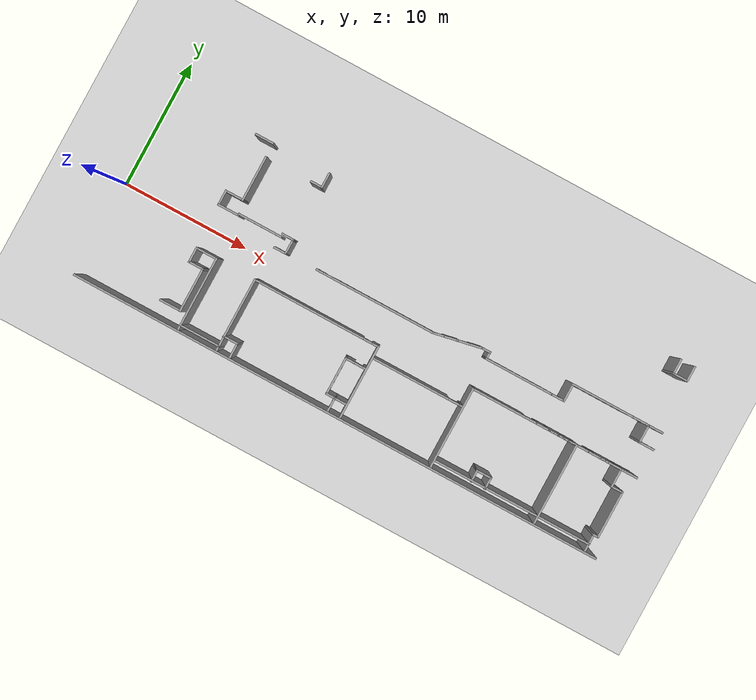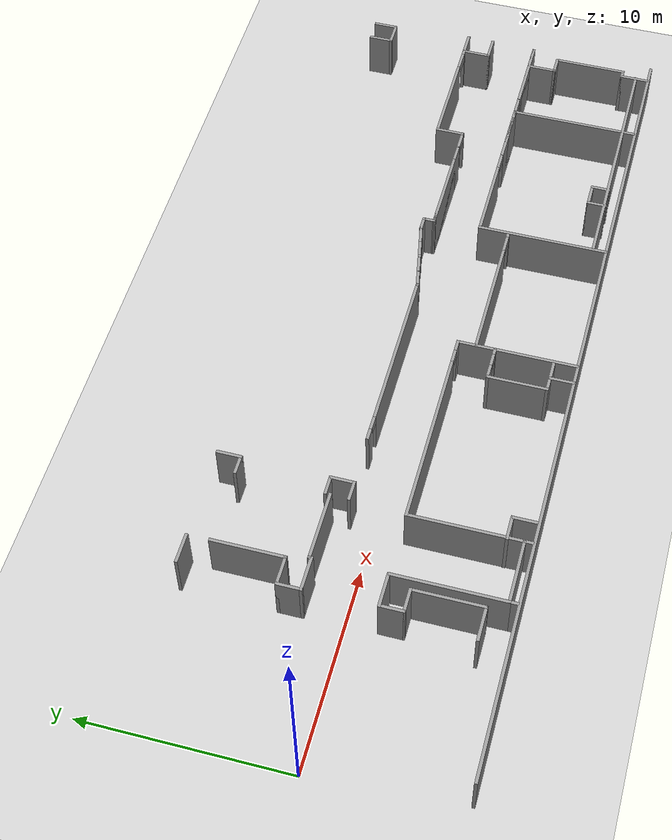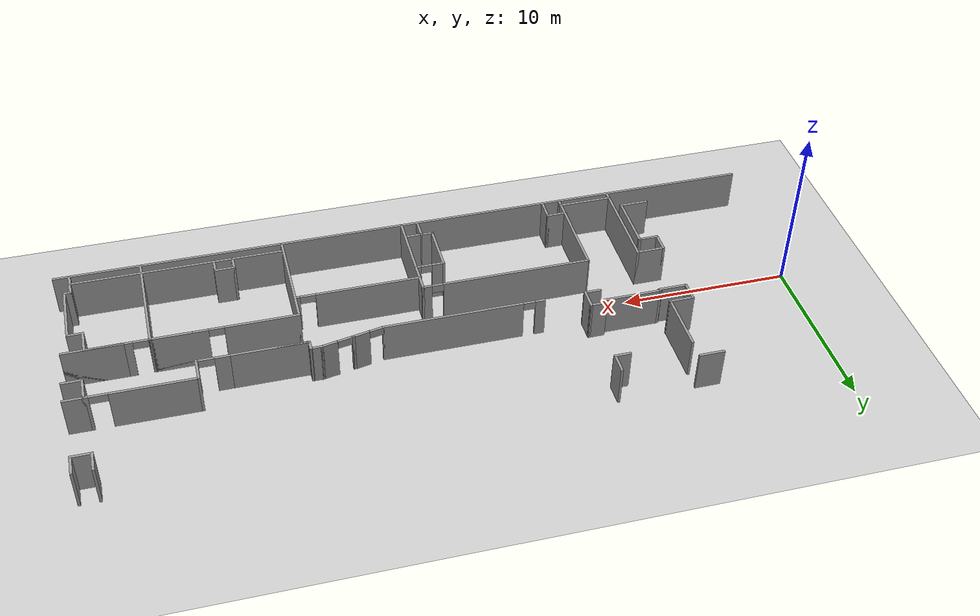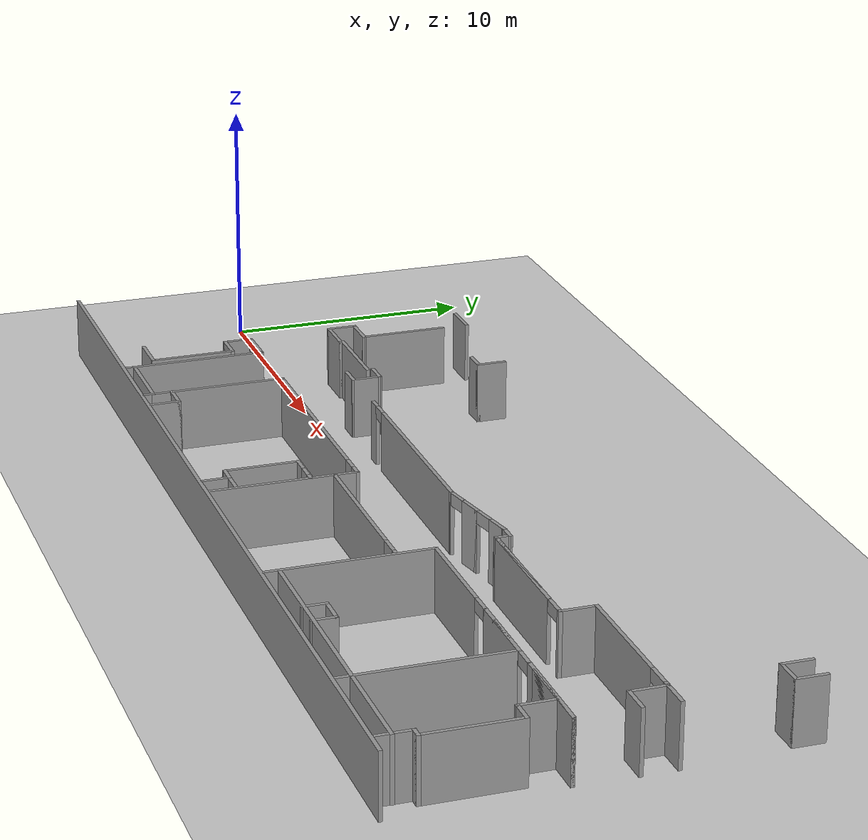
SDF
<sdf version="1.6">
 <world name="default">
  <model name="ground_plane">
   <static>1</static>
   <link name="link">
    <collision name="collision">
     <geometry><plane><normal>0 0 1</normal><size>100 100</size></plane></geometry>
     <surface>
      <contact><collide_bitmask>65535</collide_bitmask></contact>
      <friction><ode><mu>100</mu><mu2>50</mu2></ode></friction>
     </surface>
    </collision>
    <visual name="visual">
     <cast_shadows>0</cast_shadows>
     <geometry><plane><normal>0 0 1</normal><size>100 100</size></plane></geometry>
     <material>
      <script><uri>file://media/materials/scripts/gazebo.material</uri><name>Gazebo/Grey</name></script>
     </material>
    </visual>
   </link>
  </model>
  <model name="Tsudanuma_2-3-with_door">
   <pose>11.7222 12.8329 0 0 -0 0</pose>
   <link name="Wall_10">
    <collision name="Wall_10_Collision">
     <geometry><box><size>42.1591 0.15 2.5</size></box></geometry>
     <pose>0 0 1.25 0 -0 0</pose>
    </collision>
    <visual name="Wall_10_Visual">
     <pose>0 0 1.25 0 -0 0</pose>
     <geometry><box><size>42.1591 0.15 2.5</size></box></geometry>
     <material>
      <script><uri>file://media/materials/scripts/gazebo.material</uri><name>Gazebo/Grey</name></script>
      <ambient>1 1 1 1</ambient>
     </material>
     <meta><layer>0</layer></meta>
    </visual>
    <pose>9.87341 -20.1767 0 0 -0 -0.000631</pose>
   </link>
   <link name="Wall_199">
    <collision name="Wall_199_Collision">
     <geometry><box><size>1.75 0.15 2.5</size></box></geometry>
     <pose>0 0 1.25 0 -0 0</pose>
    </collision>
    <visual name="Wall_199_Visual">
     <pose>0 0 1.25 0 -0 0</pose>
     <geometry><box><size>1.75 0.15 2.5</size></box></geometry>
     <material>
      <script><uri>file://media/materials/scripts/gazebo.material</uri><name>Gazebo/Grey</name></script>
      <ambient>1 1 1 1</ambient>
     </material>
     <meta><layer>0</layer></meta>
    </visual>
    <pose>-4.13112 -18.8135 0 0 -0 0</pose>
   </link>
   <link name="Wall_200">
    <collision name="Wall_200_Collision">
     <geometry><box><size>3.5 0.15 2.5</size></box></geometry>
     <pose>0 0 1.25 0 -0 0</pose>
    </collision>
    <visual name="Wall_200_Visual">
     <pose>0 0 1.25 0 -0 0</pose>
     <geometry><box><size>3.5 0.15 2.5</size></box></geometry>
     <material>
      <script><uri>file://media/materials/scripts/gazebo.material</uri><name>Gazebo/Grey</name></script>
      <ambient>1 1 1 1</ambient>
     </material>
     <meta><layer>0</layer></meta>
    </visual>
    <pose>-3.33112 -17.1385 0 0 -0 1.5708</pose>
   </link>
   <link name="Wall_201">
    <collision name="Wall_201_Collision">
     <geometry><box><size>1.25 0.15 2.5</size></box></geometry>
     <pose>0 0 1.25 0 -0 0</pose>
    </collision>
    <visual name="Wall_201_Visual">
     <pose>0 0 1.25 0 -0 0</pose>
     <geometry><box><size>1.25 0.15 2.5</size></box></geometry>
     <material>
      <script><uri>file://media/materials/scripts/gazebo.material</uri><name>Gazebo/Grey</name></script>
      <ambient>1 1 1 1</ambient>
     </material>
     <meta><layer>0</layer></meta>
    </visual>
    <pose>-3.88112 -15.4635 0 0 -0 3.14159</pose>
   </link>
   <link name="Wall_202">
    <collision name="Wall_202_Collision">
     <geometry><box><size>1.25 0.15 2.5</size></box></geometry>
     <pose>0 0 1.25 0 -0 0</pose>
    </collision>
    <visual name="Wall_202_Visual">
     <pose>0 0 1.25 0 -0 0</pose>
     <geometry><box><size>1.25 0.15 2.5</size></box></geometry>
     <material>
      <script><uri>file://media/materials/scripts/gazebo.material</uri><name>Gazebo/Grey</name></script>
      <ambient>1 1 1 1</ambient>
     </material>
     <meta><layer>0</layer></meta>
    </visual>
    <pose>-4.43112 -14.9135 0 0 -0 1.5708</pose>
   </link>
   <link name="Wall_203">
    <collision name="Wall_203_Collision">
     <geometry><box><size>1.75 0.15 2.5</size></box></geometry>
     <pose>0 0 1.25 0 -0 0</pose>
    </collision>
    <visual name="Wall_203_Visual">
     <pose>0 0 1.25 0 -0 0</pose>
     <geometry><box><size>1.75 0.15 2.5</size></box></geometry>
     <material>
      <script><uri>file://media/materials/scripts/gazebo.material</uri><name>Gazebo/Grey</name></script>
      <ambient>1 1 1 1</ambient>
     </material>
     <meta><layer>0</layer></meta>
    </visual>
    <pose>-3.63112 -14.3635 0 0 -0 0</pose>
   </link>
   <link name="Wall_204">
    <collision name="Wall_204_Collision">
     <geometry><box><size>5.5 0.15 2.5</size></box></geometry>
     <pose>0 0 1.25 0 -0 0</pose>
    </collision>
    <visual name="Wall_204_Visual">
     <pose>0 0 1.25 0 -0 0</pose>
     <geometry><box><size>5.5 0.15 2.5</size></box></geometry>
     <material>
      <script><uri>file://media/materials/scripts/gazebo.material</uri><name>Gazebo/Grey</name></script>
      <ambient>1 1 1 1</ambient>
     </material>
     <meta><layer>0</layer></meta>
    </visual>
    <pose>-2.83112 -17.0385 0 0 -0 -1.5708</pose>
   </link>
   <link name="Wall_205">
    <collision name="Wall_205_Collision">
     <geometry><box><size>3.25 0.15 2.5</size></box></geometry>
     <pose>0 0 1.25 0 -0 0</pose>
    </collision>
    <visual name="Wall_205_Visual">
     <pose>0 0 1.25 0 -0 0</pose>
     <geometry><box><size>3.25 0.15 2.5</size></box></geometry>
     <material>
      <script><uri>file://media/materials/scripts/gazebo.material</uri><name>Gazebo/Grey</name></script>
      <ambient>1 1 1 1</ambient>
     </material>
     <meta><layer>0</layer></meta>
    </visual>
    <pose>-1.28112 -19.7135 0 0 -0 0</pose>
   </link>
   <link name="Wall_206">
    <collision name="Wall_206_Collision">
     <geometry><box><size>5.5 0.15 2.5</size></box></geometry>
     <pose>0 0 1.25 0 -0 0</pose>
    </collision>
    <visual name="Wall_206_Visual">
     <pose>0 0 1.25 0 -0 0</pose>
     <geometry><box><size>5.5 0.15 2.5</size></box></geometry>
     <material>
      <script><uri>file://media/materials/scripts/gazebo.material</uri><name>Gazebo/Grey</name></script>
      <ambient>1 1 1 1</ambient>
     </material>
     <meta><layer>0</layer></meta>
    </visual>
    <pose>0.268879 -17.0385 0 0 -0 1.5708</pose>
   </link>
   <link name="Wall_207">
    <pose>5.25051 -14.3635 0 0 -0 0</pose>
    <visual name="Wall_207_Visual_0">
     <pose>-0.640336 0 1.25 0 -0 0</pose>
     <geometry><box><size>8.83258 0.15 2.5</size></box></geometry>
     <material>
      <script><uri>file://media/materials/scripts/gazebo.material</uri><name>Gazebo/Grey</name></script>
      <ambient>1 1 1 1</ambient>
     </material>
     <meta><layer>0</layer></meta>
    </visual>
    <collision name="Wall_207_Collision_0">
     <geometry><box><size>8.83258 0.15 2.5</size></box></geometry>
     <pose>-0.640336 0 1.25 0 -0 0</pose>
    </collision>
    <visual name="Wall_207_Visual_1">
     <pose>4.75356 0 1.25 0 -0 0</pose>
     <geometry><box><size>0.606138 0.15 2.5</size></box></geometry>
     <material>
      <script><uri>file://media/materials/scripts/gazebo.material</uri><name>Gazebo/Grey</name></script>
      <ambient>1 1 1 1</ambient>
     </material>
     <meta><layer>0</layer></meta>
    </visual>
    <collision name="Wall_207_Collision_1">
     <geometry><box><size>0.606138 0.15 2.5</size></box></geometry>
     <pose>4.75356 0 1.25 0 -0 0</pose>
    </collision>
    <visual name="Wall_207_Visual_2">
     <pose>4.11322 0 2.25 0 -0 0</pose>
     <geometry><box><size>0.674534 0.15 0.5</size></box></geometry>
     <material>
      <script><uri>file://media/materials/scripts/gazebo.material</uri><name>Gazebo/Grey</name></script>
      <ambient>1 1 1 1</ambient>
     </material>
     <meta><layer>0</layer></meta>
    </visual>
    <collision name="Wall_207_Collision_2">
     <geometry><box><size>0.674534 0.15 0.5</size></box></geometry>
     <pose>4.11322 0 2.25 0 -0 0</pose>
    </collision>
   </link>
   <link name="Wall_209">
    <collision name="Wall_209_Collision">
     <geometry><box><size>5.9 0.15 2.5</size></box></geometry>
     <pose>0 0 1.25 0 -0 0</pose>
    </collision>
    <visual name="Wall_209_Visual">
     <pose>0 0 1.25 0 -0 0</pose>
     <geometry><box><size>5.9 0.15 2.5</size></box></geometry>
     <material>
      <script><uri>file://media/materials/scripts/gazebo.material</uri><name>Gazebo/Grey</name></script>
      <ambient>1 1 1 1</ambient>
     </material>
     <meta><layer>0</layer></meta>
    </visual>
    <pose>10.2321 -17.2385 0 0 -0 -1.5708</pose>
   </link>
   <link name="Wall_211">
    <pose>13.852 -15.2435 0 0 -0 0</pose>
    <visual name="Wall_211_Visual_0">
     <pose>-0.56144 0 1.25 0 -0 0</pose>
     <geometry><box><size>6.12712 0.15 2.5</size></box></geometry>
     <material>
      <script><uri>file://media/materials/scripts/gazebo.material</uri><name>Gazebo/Grey</name></script>
      <ambient>1 1 1 1</ambient>
     </material>
     <meta><layer>0</layer></meta>
    </visual>
    <collision name="Wall_211_Collision_0">
     <geometry><box><size>6.12712 0.15 2.5</size></box></geometry>
     <pose>-0.56144 0 1.25 0 -0 0</pose>
    </collision>
    <visual name="Wall_211_Visual_1">
     <pose>3.51356 0 1.25 0 -0 0</pose>
     <geometry><box><size>0.22288 0.15 2.5</size></box></geometry>
     <material>
      <script><uri>file://media/materials/scripts/gazebo.material</uri><name>Gazebo/Grey</name></script>
      <ambient>1 1 1 1</ambient>
     </material>
     <meta><layer>0</layer></meta>
    </visual>
    <collision name="Wall_211_Collision_1">
     <geometry><box><size>0.22288 0.15 2.5</size></box></geometry>
     <pose>3.51356 0 1.25 0 -0 0</pose>
    </collision>
    <visual name="Wall_211_Visual_2">
     <pose>2.95212 0 2.25 0 -0 0</pose>
     <geometry><box><size>0.9 0.15 0.5</size></box></geometry>
     <material>
      <script><uri>file://media/materials/scripts/gazebo.material</uri><name>Gazebo/Grey</name></script>
      <ambient>1 1 1 1</ambient>
     </material>
     <meta><layer>0</layer></meta>
    </visual>
    <collision name="Wall_211_Collision_2">
     <geometry><box><size>0.9 0.15 0.5</size></box></geometry>
     <pose>2.95212 0 2.25 0 -0 0</pose>
    </collision>
   </link>
   <link name="Wall_213">
    <collision name="Wall_213_Collision">
     <geometry><box><size>6.5 0.15 2.5</size></box></geometry>
     <pose>0 0 1.25 0 -0 0</pose>
    </collision>
    <visual name="Wall_213_Visual">
     <pose>0 0 1.25 0 -0 0</pose>
     <geometry><box><size>6.5 0.15 2.5</size></box></geometry>
     <material>
      <script><uri>file://media/materials/scripts/gazebo.material</uri><name>Gazebo/Grey</name></script>
      <ambient>1 1 1 1</ambient>
     </material>
     <meta><layer>0</layer></meta>
    </visual>
    <pose>17.5393 -16.9464 0 0 -0 1.5708</pose>
   </link>
   <link name="Wall_215">
    <pose>21.7143 -13.7714 0 0 -0 0</pose>
    <visual name="Wall_215_Visual_0">
     <pose>-2.09952 0 1.25 0 -0 0</pose>
     <geometry><box><size>4.30095 0.15 2.5</size></box></geometry>
     <material>
      <script><uri>file://media/materials/scripts/gazebo.material</uri><name>Gazebo/Grey</name></script>
      <ambient>1 1 1 1</ambient>
     </material>
     <meta><layer>0</layer></meta>
    </visual>
    <collision name="Wall_215_Collision_0">
     <geometry><box><size>4.30095 0.15 2.5</size></box></geometry>
     <pose>-2.09952 0 1.25 0 -0 0</pose>
    </collision>
    <visual name="Wall_215_Visual_1">
     <pose>2.60048 0 1.25 0 -0 0</pose>
     <geometry><box><size>3.29905 0.15 2.5</size></box></geometry>
     <material>
      <script><uri>file://media/materials/scripts/gazebo.material</uri><name>Gazebo/Grey</name></script>
      <ambient>1 1 1 1</ambient>
     </material>
     <meta><layer>0</layer></meta>
    </visual>
    <collision name="Wall_215_Collision_1">
     <geometry><box><size>3.29905 0.15 2.5</size></box></geometry>
     <pose>2.60048 0 1.25 0 -0 0</pose>
    </collision>
    <visual name="Wall_215_Visual_2">
     <pose>3.04013 0 1.25 0 -0 0</pose>
     <geometry><box><size>2.41973 0.15 2.5</size></box></geometry>
     <material>
      <script><uri>file://media/materials/scripts/gazebo.material</uri><name>Gazebo/Grey</name></script>
      <ambient>1 1 1 1</ambient>
     </material>
     <meta><layer>0</layer></meta>
    </visual>
    <collision name="Wall_215_Collision_2">
     <geometry><box><size>2.41973 0.15 2.5</size></box></geometry>
     <pose>3.04013 0 1.25 0 -0 0</pose>
    </collision>
    <visual name="Wall_215_Visual_3">
     <pose>0.490612 0 2.25 0 -0 0</pose>
     <geometry><box><size>0.879316 0.15 0.5</size></box></geometry>
     <material>
      <script><uri>file://media/materials/scripts/gazebo.material</uri><name>Gazebo/Grey</name></script>
      <ambient>1 1 1 1</ambient>
     </material>
     <meta><layer>0</layer></meta>
    </visual>
    <collision name="Wall_215_Collision_3">
     <geometry><box><size>0.879316 0.15 0.5</size></box></geometry>
     <pose>0.490612 0 2.25 0 -0 0</pose>
    </collision>
   </link>
   <link name="Wall_216">
    <collision name="Wall_216_Collision">
     <geometry><box><size>6.5 0.15 2.5</size></box></geometry>
     <pose>0 0 1.25 0 -0 0</pose>
    </collision>
    <visual name="Wall_216_Visual">
     <pose>0 0 1.25 0 -0 0</pose>
     <geometry><box><size>6.5 0.15 2.5</size></box></geometry>
     <material>
      <script><uri>file://media/materials/scripts/gazebo.material</uri><name>Gazebo/Grey</name></script>
      <ambient>1 1 1 1</ambient>
     </material>
     <meta><layer>0</layer></meta>
    </visual>
    <pose>25.8893 -16.9464 0 0 -0 -1.5708</pose>
   </link>
   <link name="Wall_218">
    <pose>28.3143 -13.7714 0 0 -0 0</pose>
    <visual name="Wall_218_Visual_0">
     <pose>-2.42206 0 1.25 0 -0 0</pose>
     <geometry><box><size>0.155888 0.15 2.5</size></box></geometry>
     <material>
      <script><uri>file://media/materials/scripts/gazebo.material</uri><name>Gazebo/Grey</name></script>
      <ambient>1 1 1 1</ambient>
     </material>
     <meta><layer>0</layer></meta>
    </visual>
    <collision name="Wall_218_Collision_0">
     <geometry><box><size>0.155888 0.15 2.5</size></box></geometry>
     <pose>-2.42206 0 1.25 0 -0 0</pose>
    </collision>
    <visual name="Wall_218_Visual_1">
     <pose>0.527944 0 1.25 0 -0 0</pose>
     <geometry><box><size>3.94411 0.15 2.5</size></box></geometry>
     <material>
      <script><uri>file://media/materials/scripts/gazebo.material</uri><name>Gazebo/Grey</name></script>
      <ambient>1 1 1 1</ambient>
     </material>
     <meta><layer>0</layer></meta>
    </visual>
    <collision name="Wall_218_Collision_1">
     <geometry><box><size>3.94411 0.15 2.5</size></box></geometry>
     <pose>0.527944 0 1.25 0 -0 0</pose>
    </collision>
    <visual name="Wall_218_Visual_2">
     <pose>0.750592 0 1.25 0 -0 0</pose>
     <geometry><box><size>3.49882 0.15 2.5</size></box></geometry>
     <material>
      <script><uri>file://media/materials/scripts/gazebo.material</uri><name>Gazebo/Grey</name></script>
      <ambient>1 1 1 1</ambient>
     </material>
     <meta><layer>0</layer></meta>
    </visual>
    <collision name="Wall_218_Collision_2">
     <geometry><box><size>3.49882 0.15 2.5</size></box></geometry>
     <pose>0.750592 0 1.25 0 -0 0</pose>
    </collision>
    <visual name="Wall_218_Visual_3">
     <pose>-1.91291 0 2.25 0 -0 0</pose>
     <geometry><box><size>0.862406 0.15 0.5</size></box></geometry>
     <material>
      <script><uri>file://media/materials/scripts/gazebo.material</uri><name>Gazebo/Grey</name></script>
      <ambient>1 1 1 1</ambient>
     </material>
     <meta><layer>0</layer></meta>
    </visual>
    <collision name="Wall_218_Collision_3">
     <geometry><box><size>0.862406 0.15 0.5</size></box></geometry>
     <pose>-1.91291 0 2.25 0 -0 0</pose>
    </collision>
   </link>
   <link name="Wall_220">
    <collision name="Wall_220_Collision">
     <geometry><box><size>1.48998 0.15 2.5</size></box></geometry>
     <pose>0 0 1.25 0 -0 0</pose>
    </collision>
    <visual name="Wall_220_Visual">
     <pose>0 0 1.25 0 -0 0</pose>
     <geometry><box><size>1.48998 0.15 2.5</size></box></geometry>
     <material>
      <script><uri>file://media/materials/scripts/gazebo.material</uri><name>Gazebo/Grey</name></script>
      <ambient>1 1 1 1</ambient>
     </material>
     <meta><layer>0</layer></meta>
    </visual>
    <pose>23.6117 -10.7807 0 0 -0 1.5708</pose>
   </link>
   <link name="Wall_221">
    <pose>26.6617 -10.1108 0 0 -0 0</pose>
    <visual name="Wall_221_Visual_0">
     <pose>-0.676638 0 1.25 0 -0 0</pose>
     <geometry><box><size>4.89672 0.15 2.5</size></box></geometry>
     <material>
      <script><uri>file://media/materials/scripts/gazebo.material</uri><name>Gazebo/Grey</name></script>
      <ambient>1 1 1 1</ambient>
     </material>
     <meta><layer>0</layer></meta>
    </visual>
    <collision name="Wall_221_Collision_0">
     <geometry><box><size>4.89672 0.15 2.5</size></box></geometry>
     <pose>-0.676638 0 1.25 0 -0 0</pose>
    </collision>
    <visual name="Wall_221_Visual_1">
     <pose>2.966 0 1.25 0 -0 0</pose>
     <geometry><box><size>0.317996 0.15 2.5</size></box></geometry>
     <material>
      <script><uri>file://media/materials/scripts/gazebo.material</uri><name>Gazebo/Grey</name></script>
      <ambient>1 1 1 1</ambient>
     </material>
     <meta><layer>0</layer></meta>
    </visual>
    <collision name="Wall_221_Collision_1">
     <geometry><box><size>0.317996 0.15 2.5</size></box></geometry>
     <pose>2.966 0 1.25 0 -0 0</pose>
    </collision>
    <visual name="Wall_221_Visual_2">
     <pose>2.28936 0 2.25 0 -0 0</pose>
     <geometry><box><size>1.03528 0.15 0.5</size></box></geometry>
     <material>
      <script><uri>file://media/materials/scripts/gazebo.material</uri><name>Gazebo/Grey</name></script>
      <ambient>1 1 1 1</ambient>
     </material>
     <meta><layer>0</layer></meta>
    </visual>
    <collision name="Wall_221_Collision_2">
     <geometry><box><size>1.03528 0.15 0.5</size></box></geometry>
     <pose>2.28936 0 2.25 0 -0 0</pose>
    </collision>
   </link>
   <link name="Wall_222">
    <collision name="Wall_222_Collision">
     <geometry><box><size>1.5 0.15 2.5</size></box></geometry>
     <pose>0 0 1.25 0 -0 0</pose>
    </collision>
    <visual name="Wall_222_Visual">
     <pose>0 0 1.25 0 -0 0</pose>
     <geometry><box><size>1.5 0.15 2.5</size></box></geometry>
     <material>
      <script><uri>file://media/materials/scripts/gazebo.material</uri><name>Gazebo/Grey</name></script>
      <ambient>1 1 1 1</ambient>
     </material>
     <meta><layer>0</layer></meta>
    </visual>
    <pose>29.7117 -10.7858 0 0 -0 -1.5708</pose>
   </link>
   <link name="Wall_223">
    <collision name="Wall_223_Collision">
     <geometry><box><size>1.25 0.15 2.5</size></box></geometry>
     <pose>0 0 1.25 0 -0 0</pose>
    </collision>
    <visual name="Wall_223_Visual">
     <pose>0 0 1.25 0 -0 0</pose>
     <geometry><box><size>1.25 0.15 2.5</size></box></geometry>
     <material>
      <script><uri>file://media/materials/scripts/gazebo.material</uri><name>Gazebo/Grey</name></script>
      <ambient>1 1 1 1</ambient>
     </material>
     <meta><layer>0</layer></meta>
    </visual>
    <pose>30.2617 -11.4608 0 0 -0 0</pose>
   </link>
   <link name="Wall_225">
    <pose>20.4867 -11.4507 0 0 -0 3.14159</pose>
    <visual name="Wall_225_Visual_0">
     <pose>-3.11204 0 1.25 0 -0 0</pose>
     <geometry><box><size>0.17593 0.15 2.5</size></box></geometry>
     <material>
      <script><uri>file://media/materials/scripts/gazebo.material</uri><name>Gazebo/Grey</name></script>
      <ambient>1 1 1 1</ambient>
     </material>
     <meta><layer>0</layer></meta>
    </visual>
    <collision name="Wall_225_Collision_0">
     <geometry><box><size>0.17593 0.15 2.5</size></box></geometry>
     <pose>-3.11204 0 1.25 0 -0 0</pose>
    </collision>
    <visual name="Wall_225_Visual_1">
     <pose>0.537965 0 1.25 0 -0 0</pose>
     <geometry><box><size>5.32407 0.15 2.5</size></box></geometry>
     <material>
      <script><uri>file://media/materials/scripts/gazebo.material</uri><name>Gazebo/Grey</name></script>
      <ambient>1 1 1 1</ambient>
     </material>
     <meta><layer>0</layer></meta>
    </visual>
    <collision name="Wall_225_Collision_1">
     <geometry><box><size>5.32407 0.15 2.5</size></box></geometry>
     <pose>0.537965 0 1.25 0 -0 0</pose>
    </collision>
    <visual name="Wall_225_Visual_2">
     <pose>0.971986 0 1.25 0 -0 0</pose>
     <geometry><box><size>4.45603 0.15 2.5</size></box></geometry>
     <material>
      <script><uri>file://media/materials/scripts/gazebo.material</uri><name>Gazebo/Grey</name></script>
      <ambient>1 1 1 1</ambient>
     </material>
     <meta><layer>0</layer></meta>
    </visual>
    <collision name="Wall_225_Collision_2">
     <geometry><box><size>4.45603 0.15 2.5</size></box></geometry>
     <pose>0.971986 0 1.25 0 -0 0</pose>
    </collision>
    <visual name="Wall_225_Visual_3">
     <pose>-2.59005 0 2.25 0 -0 0</pose>
     <geometry><box><size>0.868042 0.15 0.5</size></box></geometry>
     <material>
      <script><uri>file://media/materials/scripts/gazebo.material</uri><name>Gazebo/Grey</name></script>
      <ambient>1 1 1 1</ambient>
     </material>
     <meta><layer>0</layer></meta>
    </visual>
    <collision name="Wall_225_Collision_3">
     <geometry><box><size>0.868042 0.15 0.5</size></box></geometry>
     <pose>-2.59005 0 2.25 0 -0 0</pose>
    </collision>
   </link>
   <link name="Wall_227">
    <collision name="Wall_227_Collision">
     <geometry><box><size>0.75 0.15 2.5</size></box></geometry>
     <pose>0 0 1.25 0 -0 0</pose>
    </collision>
    <visual name="Wall_227_Visual">
     <pose>0 0 1.25 0 -0 0</pose>
     <geometry><box><size>0.75 0.15 2.5</size></box></geometry>
     <material>
      <script><uri>file://media/materials/scripts/gazebo.material</uri><name>Gazebo/Grey</name></script>
      <ambient>1 1 1 1</ambient>
     </material>
     <meta><layer>0</layer></meta>
    </visual>
    <pose>17.0623 -10.9296 0 0 -0 0</pose>
   </link>
   <link name="Wall_229">
    <collision name="Wall_229_Collision">
     <geometry><box><size>0.67111 0.15 2.5</size></box></geometry>
     <pose>0 0 1.25 0 -0 0</pose>
    </collision>
    <visual name="Wall_229_Visual">
     <pose>0 0 1.25 0 -0 0</pose>
     <geometry><box><size>0.67111 0.15 2.5</size></box></geometry>
     <material>
      <script><uri>file://media/materials/scripts/gazebo.material</uri><name>Gazebo/Grey</name></script>
      <ambient>1 1 1 1</ambient>
     </material>
     <meta><layer>0</layer></meta>
    </visual>
    <pose>17.362 -11.1902 0 0 -0 1.56961</pose>
   </link>
   <link name="Wall_231">
    <pose>14.9482 -11.2854 0 0 -0 0.193674</pose>
    <visual name="Wall_231_Visual_0">
     <pose>-1.87851 0 1.25 0 -0 0</pose>
     <geometry><box><size>0.090369 0.15 2.5</size></box></geometry>
     <material>
      <script><uri>file://media/materials/scripts/gazebo.material</uri><name>Gazebo/Grey</name></script>
      <ambient>1 1 1 1</ambient>
     </material>
     <meta><layer>0</layer></meta>
    </visual>
    <collision name="Wall_231_Collision_0">
     <geometry><box><size>0.090369 0.15 2.5</size></box></geometry>
     <pose>-1.87851 0 1.25 0 -0 0</pose>
    </collision>
    <visual name="Wall_231_Visual_1">
     <pose>-0.463719 0 1.25 0 -0 0</pose>
     <geometry><box><size>1.05418 0.15 2.5</size></box></geometry>
     <material>
      <script><uri>file://media/materials/scripts/gazebo.material</uri><name>Gazebo/Grey</name></script>
      <ambient>1 1 1 1</ambient>
     </material>
     <meta><layer>0</layer></meta>
    </visual>
    <collision name="Wall_231_Collision_1">
     <geometry><box><size>1.05418 0.15 2.5</size></box></geometry>
     <pose>-0.463719 0 1.25 0 -0 0</pose>
    </collision>
    <visual name="Wall_231_Visual_2">
     <pose>-0.022028 0 1.25 0 -0 0</pose>
     <geometry><box><size>0.170802 0.15 2.5</size></box></geometry>
     <material>
      <script><uri>file://media/materials/scripts/gazebo.material</uri><name>Gazebo/Grey</name></script>
      <ambient>1 1 1 1</ambient>
     </material>
     <meta><layer>0</layer></meta>
    </visual>
    <collision name="Wall_231_Collision_2">
     <geometry><box><size>0.170802 0.15 2.5</size></box></geometry>
     <pose>-0.022028 0 1.25 0 -0 0</pose>
    </collision>
    <visual name="Wall_231_Visual_3">
     <pose>1.42141 0 1.25 0 -0 0</pose>
     <geometry><box><size>1.00458 0.15 2.5</size></box></geometry>
     <material>
      <script><uri>file://media/materials/scripts/gazebo.material</uri><name>Gazebo/Grey</name></script>
      <ambient>1 1 1 1</ambient>
     </material>
     <meta><layer>0</layer></meta>
    </visual>
    <collision name="Wall_231_Collision_3">
     <geometry><box><size>1.00458 0.15 2.5</size></box></geometry>
     <pose>1.42141 0 1.25 0 -0 0</pose>
    </collision>
    <visual name="Wall_231_Visual_4">
     <pose>1.85041 0 1.25 0 -0 0</pose>
     <geometry><box><size>0.146573 0.15 2.5</size></box></geometry>
     <material>
      <script><uri>file://media/materials/scripts/gazebo.material</uri><name>Gazebo/Grey</name></script>
      <ambient>1 1 1 1</ambient>
     </material>
     <meta><layer>0</layer></meta>
    </visual>
    <collision name="Wall_231_Collision_4">
     <geometry><box><size>0.146573 0.15 2.5</size></box></geometry>
     <pose>1.85041 0 1.25 0 -0 0</pose>
    </collision>
    <visual name="Wall_231_Visual_5">
     <pose>-1.42038 0 2.25 0 -0 0</pose>
     <geometry><box><size>0.8259 0.15 0.5</size></box></geometry>
     <material>
      <script><uri>file://media/materials/scripts/gazebo.material</uri><name>Gazebo/Grey</name></script>
      <ambient>1 1 1 1</ambient>
     </material>
     <meta><layer>0</layer></meta>
    </visual>
    <collision name="Wall_231_Collision_5">
     <geometry><box><size>0.8259 0.15 0.5</size></box></geometry>
     <pose>-1.42038 0 2.25 0 -0 0</pose>
    </collision>
    <visual name="Wall_231_Visual_6">
     <pose>0.486843 0 2.25 0 -0 0</pose>
     <geometry><box><size>0.84694 0.15 0.5</size></box></geometry>
     <material>
      <script><uri>file://media/materials/scripts/gazebo.material</uri><name>Gazebo/Grey</name></script>
      <ambient>1 1 1 1</ambient>
     </material>
     <meta><layer>0</layer></meta>
    </visual>
    <collision name="Wall_231_Collision_6">
     <geometry><box><size>0.84694 0.15 0.5</size></box></geometry>
     <pose>0.486843 0 2.25 0 -0 0</pose>
    </collision>
    <visual name="Wall_231_Visual_7">
     <pose>0.486843 0 2.25 0 -0 0</pose>
     <geometry><box><size>0.84694 0.15 0.5</size></box></geometry>
     <material>
      <script><uri>file://media/materials/scripts/gazebo.material</uri><name>Gazebo/Grey</name></script>
      <ambient>1 1 1 1</ambient>
     </material>
     <meta><layer>0</layer></meta>
    </visual>
    <collision name="Wall_231_Collision_7">
     <geometry><box><size>0.84694 0.15 0.5</size></box></geometry>
     <pose>0.486843 0 2.25 0 -0 0</pose>
    </collision>
   </link>
   <link name="Wall_234">
    <pose>8.45905 -11.6412 0 0 -0 3.14159</pose>
    <visual name="Wall_234_Visual_0">
     <pose>-0.642674 0 1.25 0 -0 0</pose>
     <geometry><box><size>8.21465 0.15 2.5</size></box></geometry>
     <material>
      <script><uri>file://media/materials/scripts/gazebo.material</uri><name>Gazebo/Grey</name></script>
      <ambient>1 1 1 1</ambient>
     </material>
     <meta><layer>0</layer></meta>
    </visual>
    <collision name="Wall_234_Collision_0">
     <geometry><box><size>8.21465 0.15 2.5</size></box></geometry>
     <pose>-0.642674 0 1.25 0 -0 0</pose>
    </collision>
    <visual name="Wall_234_Visual_1">
     <pose>4.45587 0 1.25 0 -0 0</pose>
     <geometry><box><size>0.588268 0.15 2.5</size></box></geometry>
     <material>
      <script><uri>file://media/materials/scripts/gazebo.material</uri><name>Gazebo/Grey</name></script>
      <ambient>1 1 1 1</ambient>
     </material>
     <meta><layer>0</layer></meta>
    </visual>
    <collision name="Wall_234_Collision_1">
     <geometry><box><size>0.588268 0.15 2.5</size></box></geometry>
     <pose>4.45587 0 1.25 0 -0 0</pose>
    </collision>
    <visual name="Wall_234_Visual_2">
     <pose>3.81319 0 2.25 0 -0 0</pose>
     <geometry><box><size>0.697081 0.15 0.5</size></box></geometry>
     <material>
      <script><uri>file://media/materials/scripts/gazebo.material</uri><name>Gazebo/Grey</name></script>
      <ambient>1 1 1 1</ambient>
     </material>
     <meta><layer>0</layer></meta>
    </visual>
    <collision name="Wall_234_Collision_2">
     <geometry><box><size>0.697081 0.15 0.5</size></box></geometry>
     <pose>3.81319 0 2.25 0 -0 0</pose>
    </collision>
   </link>
   <link name="Wall_358">
    <collision name="Wall_358_Collision">
     <geometry><box><size>1.25 0.15 2.5</size></box></geometry>
     <pose>0 0 1.25 0 -0 0</pose>
    </collision>
    <visual name="Wall_358_Visual">
     <pose>0 0 1.25 0 -0 0</pose>
     <geometry><box><size>1.25 0.15 2.5</size></box></geometry>
     <material>
      <script><uri>file://media/materials/scripts/gazebo.material</uri><name>Gazebo/Grey</name></script>
      <ambient>1 1 1 1</ambient>
     </material>
     <meta><layer>0</layer></meta>
    </visual>
    <pose>1.30999 -5.79809 0 0 -0 -1.5708</pose>
   </link>
   <link name="Wall_359">
    <collision name="Wall_359_Collision">
     <geometry><box><size>1 0.15 2.5</size></box></geometry>
     <pose>0 0 1.25 0 -0 0</pose>
    </collision>
    <visual name="Wall_359_Visual">
     <pose>0 0 1.25 0 -0 0</pose>
     <geometry><box><size>1 0.15 2.5</size></box></geometry>
     <material>
      <script><uri>file://media/materials/scripts/gazebo.material</uri><name>Gazebo/Grey</name></script>
      <ambient>1 1 1 1</ambient>
     </material>
     <meta><layer>0</layer></meta>
    </visual>
    <pose>0.884987 -6.34809 0 0 -0 3.14159</pose>
   </link>
   <link name="Wall_361">
    <collision name="Wall_361_Collision">
     <geometry><box><size>1 0.15 2.5</size></box></geometry>
     <pose>0 0 1.25 0 -0 0</pose>
    </collision>
    <visual name="Wall_361_Visual">
     <pose>0 0 1.25 0 -0 0</pose>
     <geometry><box><size>1 0.15 2.5</size></box></geometry>
     <material>
      <script><uri>file://media/materials/scripts/gazebo.material</uri><name>Gazebo/Grey</name></script>
      <ambient>1 1 1 1</ambient>
     </material>
     <meta><layer>0</layer></meta>
    </visual>
    <pose>0.869952 -10.5853 0 0 -0 0</pose>
   </link>
   <link name="Wall_362">
    <collision name="Wall_362_Collision">
     <geometry><box><size>1.25572 0.15 2.5</size></box></geometry>
     <pose>0 0 1.25 0 -0 0</pose>
    </collision>
    <visual name="Wall_362_Visual">
     <pose>0 0 1.25 0 -0 0</pose>
     <geometry><box><size>1.25572 0.15 2.5</size></box></geometry>
     <material>
      <script><uri>file://media/materials/scripts/gazebo.material</uri><name>Gazebo/Grey</name></script>
      <ambient>1 1 1 1</ambient>
     </material>
     <meta><layer>0</layer></meta>
    </visual>
    <pose>1.29353 -11.1381 0 0 -0 -1.57337</pose>
   </link>
   <link name="Wall_365">
    <collision name="Wall_365_Collision">
     <geometry><box><size>1.03 0.15 2.5</size></box></geometry>
     <pose>0 0 1.25 0 -0 0</pose>
    </collision>
    <visual name="Wall_365_Visual">
     <pose>0 0 1.25 0 -0 0</pose>
     <geometry><box><size>1.03 0.15 2.5</size></box></geometry>
     <material>
      <script><uri>file://media/materials/scripts/gazebo.material</uri><name>Gazebo/Grey</name></script>
      <ambient>1 1 1 1</ambient>
     </material>
     <meta><layer>0</layer></meta>
    </visual>
    <pose>0.85211 -11.6909 0 0 -0 3.14159</pose>
   </link>
   <link name="Wall_385">
    <collision name="Wall_385_Collision">
     <geometry><box><size>1.25 0.15 2.5</size></box></geometry>
     <pose>0 0 1.25 0 -0 0</pose>
    </collision>
    <visual name="Wall_385_Visual">
     <pose>0 0 1.25 0 -0 0</pose>
     <geometry><box><size>1.25 0.15 2.5</size></box></geometry>
     <material>
      <script><uri>file://media/materials/scripts/gazebo.material</uri><name>Gazebo/Grey</name></script>
      <ambient>1 1 1 1</ambient>
     </material>
     <meta><layer>0</layer></meta>
    </visual>
    <pose>30.5998 -5.4857 0 0 -0 -1.5708</pose>
   </link>
   <link name="Wall_386">
    <collision name="Wall_386_Collision">
     <geometry><box><size>1.25 0.15 2.5</size></box></geometry>
     <pose>0 0 1.25 0 -0 0</pose>
    </collision>
    <visual name="Wall_386_Visual">
     <pose>0 0 1.25 0 -0 0</pose>
     <geometry><box><size>1.25 0.15 2.5</size></box></geometry>
     <material>
      <script><uri>file://media/materials/scripts/gazebo.material</uri><name>Gazebo/Grey</name></script>
      <ambient>1 1 1 1</ambient>
     </material>
     <meta><layer>0</layer></meta>
    </visual>
    <pose>30.0498 -6.0357 0 0 -0 3.14159</pose>
   </link>
   <link name="Wall_387">
    <collision name="Wall_387_Collision">
     <geometry><box><size>1.25 0.15 2.5</size></box></geometry>
     <pose>0 0 1.25 0 -0 0</pose>
    </collision>
    <visual name="Wall_387_Visual">
     <pose>0 0 1.25 0 -0 0</pose>
     <geometry><box><size>1.25 0.15 2.5</size></box></geometry>
     <material>
      <script><uri>file://media/materials/scripts/gazebo.material</uri><name>Gazebo/Grey</name></script>
      <ambient>1 1 1 1</ambient>
     </material>
     <meta><layer>0</layer></meta>
    </visual>
    <pose>29.4998 -5.4857 0 0 -0 1.5708</pose>
   </link>
   <link name="Wall_389">
    <collision name="Wall_389_Collision">
     <geometry><box><size>1.25 0.15 2.5</size></box></geometry>
     <pose>0 0 1.25 0 -0 0</pose>
    </collision>
    <visual name="Wall_389_Visual">
     <pose>0 0 1.25 0 -0 0</pose>
     <geometry><box><size>1.25 0.15 2.5</size></box></geometry>
     <material>
      <script><uri>file://media/materials/scripts/gazebo.material</uri><name>Gazebo/Grey</name></script>
      <ambient>1 1 1 1</ambient>
     </material>
     <meta><layer>0</layer></meta>
    </visual>
    <pose>30.2617 -10.1108 0 0 -0 0</pose>
   </link>
   <link name="Wall_392">
    <collision name="Wall_392_Collision">
     <geometry><box><size>3.5 0.15 2.5</size></box></geometry>
     <pose>0 0 1.25 0 -0 0</pose>
    </collision>
    <visual name="Wall_392_Visual">
     <pose>0 0 1.25 0 -0 0</pose>
     <geometry><box><size>3.5 0.15 2.5</size></box></geometry>
     <material>
      <script><uri>file://media/materials/scripts/gazebo.material</uri><name>Gazebo/Grey</name></script>
      <ambient>1 1 1 1</ambient>
     </material>
     <meta><layer>0</layer></meta>
    </visual>
    <pose>-1.26061 -10.8154 0 0 -0 0</pose>
   </link>
   <link name="Wall_394">
    <collision name="Wall_394_Collision">
     <geometry><box><size>0.25 0.15 2.5</size></box></geometry>
     <pose>0 0 1.25 0 -0 0</pose>
    </collision>
    <visual name="Wall_394_Visual">
     <pose>0 0 1.25 0 -0 0</pose>
     <geometry><box><size>0.25 0.15 2.5</size></box></geometry>
     <material>
      <script><uri>file://media/materials/scripts/gazebo.material</uri><name>Gazebo/Grey</name></script>
      <ambient>1 1 1 1</ambient>
     </material>
     <meta><layer>0</layer></meta>
    </visual>
    <pose>-2.93561 -10.8654 0 0 -0 -1.5708</pose>
   </link>
   <link name="Wall_395">
    <collision name="Wall_395_Collision">
     <geometry><box><size>1.75 0.15 2.5</size></box></geometry>
     <pose>0 0 1.25 0 -0 0</pose>
    </collision>
    <visual name="Wall_395_Visual">
     <pose>0 0 1.25 0 -0 0</pose>
     <geometry><box><size>1.75 0.15 2.5</size></box></geometry>
     <material>
      <script><uri>file://media/materials/scripts/gazebo.material</uri><name>Gazebo/Grey</name></script>
      <ambient>1 1 1 1</ambient>
     </material>
     <meta><layer>0</layer></meta>
    </visual>
    <pose>-3.73561 -10.9154 0 0 -0 3.14159</pose>
   </link>
   <link name="Wall_396">
    <collision name="Wall_396_Collision">
     <geometry><box><size>1.25 0.15 2.5</size></box></geometry>
     <pose>0 0 1.25 0 -0 0</pose>
    </collision>
    <visual name="Wall_396_Visual">
     <pose>0 0 1.25 0 -0 0</pose>
     <geometry><box><size>1.25 0.15 2.5</size></box></geometry>
     <material>
      <script><uri>file://media/materials/scripts/gazebo.material</uri><name>Gazebo/Grey</name></script>
      <ambient>1 1 1 1</ambient>
     </material>
     <meta><layer>0</layer></meta>
    </visual>
    <pose>-4.53561 -10.3654 0 0 -0 1.5708</pose>
   </link>
   <link name="Wall_397">
    <collision name="Wall_397_Collision">
     <geometry><box><size>1.5 0.15 2.5</size></box></geometry>
     <pose>0 0 1.25 0 -0 0</pose>
    </collision>
    <visual name="Wall_397_Visual">
     <pose>0 0 1.25 0 -0 0</pose>
     <geometry><box><size>1.5 0.15 2.5</size></box></geometry>
     <material>
      <script><uri>file://media/materials/scripts/gazebo.material</uri><name>Gazebo/Grey</name></script>
      <ambient>1 1 1 1</ambient>
     </material>
     <meta><layer>0</layer></meta>
    </visual>
    <pose>-3.86061 -9.81535 0 0 -0 0</pose>
   </link>
   <link name="Wall_399">
    <collision name="Wall_399_Collision">
     <geometry><box><size>3.59396 0.15 2.5</size></box></geometry>
     <pose>0 0 1.25 0 -0 0</pose>
    </collision>
    <visual name="Wall_399_Visual">
     <pose>0 0 1.25 0 -0 0</pose>
     <geometry><box><size>3.59396 0.15 2.5</size></box></geometry>
     <material>
      <script><uri>file://media/materials/scripts/gazebo.material</uri><name>Gazebo/Grey</name></script>
      <ambient>1 1 1 1</ambient>
     </material>
     <meta><layer>0</layer></meta>
    </visual>
    <pose>-3.18655 -8.09337 0 0 -0 1.57135</pose>
   </link>
   <link name="Wall_401">
    <collision name="Wall_401_Collision">
     <geometry><box><size>1.5 0.15 2.5</size></box></geometry>
     <pose>0 0 1.25 0 -0 0</pose>
    </collision>
    <visual name="Wall_401_Visual">
     <pose>0 0 1.25 0 -0 0</pose>
     <geometry><box><size>1.5 0.15 2.5</size></box></geometry>
     <material>
      <script><uri>file://media/materials/scripts/gazebo.material</uri><name>Gazebo/Grey</name></script>
      <ambient>1 1 1 1</ambient>
     </material>
     <meta><layer>0</layer></meta>
    </visual>
    <pose>29.4798 -14.4917 0 0 -0 -1.5708</pose>
   </link>
   <link name="Wall_402">
    <collision name="Wall_402_Collision">
     <geometry><box><size>1 0.15 2.5</size></box></geometry>
     <pose>0 0 1.25 0 -0 0</pose>
    </collision>
    <visual name="Wall_402_Visual">
     <pose>0 0 1.25 0 -0 0</pose>
     <geometry><box><size>1 0.15 2.5</size></box></geometry>
     <material>
      <script><uri>file://media/materials/scripts/gazebo.material</uri><name>Gazebo/Grey</name></script>
      <ambient>1 1 1 1</ambient>
     </material>
     <meta><layer>0</layer></meta>
    </visual>
    <pose>29.9048 -15.1667 0 0 -0 0</pose>
   </link>
   <link name="Wall_403">
    <collision name="Wall_403_Collision">
     <geometry><box><size>3.75 0.15 2.5</size></box></geometry>
     <pose>0 0 1.25 0 -0 0</pose>
    </collision>
    <visual name="Wall_403_Visual">
     <pose>0 0 1.25 0 -0 0</pose>
     <geometry><box><size>3.75 0.15 2.5</size></box></geometry>
     <material>
      <script><uri>file://media/materials/scripts/gazebo.material</uri><name>Gazebo/Grey</name></script>
      <ambient>1 1 1 1</ambient>
     </material>
     <meta><layer>0</layer></meta>
    </visual>
    <pose>30.3298 -16.9667 0 0 -0 -1.5708</pose>
   </link>
   <link name="Wall_404">
    <collision name="Wall_404_Collision">
     <geometry><box><size>0.5 0.15 2.5</size></box></geometry>
     <pose>0 0 1.25 0 -0 0</pose>
    </collision>
    <visual name="Wall_404_Visual">
     <pose>0 0 1.25 0 -0 0</pose>
     <geometry><box><size>0.5 0.15 2.5</size></box></geometry>
     <material>
      <script><uri>file://media/materials/scripts/gazebo.material</uri><name>Gazebo/Grey</name></script>
      <ambient>1 1 1 1</ambient>
     </material>
     <meta><layer>0</layer></meta>
    </visual>
    <pose>30.1548 -18.7667 0 0 -0 3.14159</pose>
   </link>
   <link name="Wall_405">
    <collision name="Wall_405_Collision">
     <geometry><box><size>1.5 0.15 2.5</size></box></geometry>
     <pose>0 0 1.25 0 -0 0</pose>
    </collision>
    <visual name="Wall_405_Visual">
     <pose>0 0 1.25 0 -0 0</pose>
     <geometry><box><size>1.5 0.15 2.5</size></box></geometry>
     <material>
      <script><uri>file://media/materials/scripts/gazebo.material</uri><name>Gazebo/Grey</name></script>
      <ambient>1 1 1 1</ambient>
     </material>
     <meta><layer>0</layer></meta>
    </visual>
    <pose>29.9798 -19.4417 0 0 -0 -1.5708</pose>
   </link>
   <link name="Wall_407">
    <collision name="Wall_407_Collision">
     <geometry><box><size>12.5 0.15 2.5</size></box></geometry>
     <pose>0 0 1.25 0 -0 0</pose>
    </collision>
    <visual name="Wall_407_Visual">
     <pose>0 0 1.25 0 -0 0</pose>
     <geometry><box><size>12.5 0.15 2.5</size></box></geometry>
     <material>
      <script><uri>file://media/materials/scripts/gazebo.material</uri><name>Gazebo/Grey</name></script>
      <ambient>1 1 1 1</ambient>
     </material>
     <meta><layer>0</layer></meta>
    </visual>
    <pose>23.8288 -19.5205 0 0 -0 3.14159</pose>
   </link>
   <link name="Wall_409">
    <collision name="Wall_409_Collision">
     <geometry><box><size>1 0.15 2.5</size></box></geometry>
     <pose>0 0 1.25 0 -0 0</pose>
    </collision>
    <visual name="Wall_409_Visual">
     <pose>0 0 1.25 0 -0 0</pose>
     <geometry><box><size>1 0.15 2.5</size></box></geometry>
     <material>
      <script><uri>file://media/materials/scripts/gazebo.material</uri><name>Gazebo/Grey</name></script>
      <ambient>1 1 1 1</ambient>
     </material>
     <meta><layer>0</layer></meta>
    </visual>
    <pose>20.5633 -19.1449 0 0 -0 1.5708</pose>
   </link>
   <link name="Wall_410">
    <collision name="Wall_410_Collision">
     <geometry><box><size>1.25 0.15 2.5</size></box></geometry>
     <pose>0 0 1.25 0 -0 0</pose>
    </collision>
    <visual name="Wall_410_Visual">
     <pose>0 0 1.25 0 -0 0</pose>
     <geometry><box><size>1.25 0.15 2.5</size></box></geometry>
     <material>
      <script><uri>file://media/materials/scripts/gazebo.material</uri><name>Gazebo/Grey</name></script>
      <ambient>1 1 1 1</ambient>
     </material>
     <meta><layer>0</layer></meta>
    </visual>
    <pose>21.1133 -18.7199 0 0 -0 0</pose>
   </link>
   <link name="Wall_411">
    <collision name="Wall_411_Collision">
     <geometry><box><size>1 0.15 2.5</size></box></geometry>
     <pose>0 0 1.25 0 -0 0</pose>
    </collision>
    <visual name="Wall_411_Visual">
     <pose>0 0 1.25 0 -0 0</pose>
     <geometry><box><size>1 0.15 2.5</size></box></geometry>
     <material>
      <script><uri>file://media/materials/scripts/gazebo.material</uri><name>Gazebo/Grey</name></script>
      <ambient>1 1 1 1</ambient>
     </material>
     <meta><layer>0</layer></meta>
    </visual>
    <pose>21.6633 -19.1449 0 0 -0 -1.5708</pose>
   </link>
   <link name="Wall_413">
    <collision name="Wall_413_Collision">
     <geometry><box><size>1.25 0.15 2.5</size></box></geometry>
     <pose>0 0 1.25 0 -0 0</pose>
    </collision>
    <visual name="Wall_413_Visual">
     <pose>0 0 1.25 0 -0 0</pose>
     <geometry><box><size>1.25 0.15 2.5</size></box></geometry>
     <material>
      <script><uri>file://media/materials/scripts/gazebo.material</uri><name>Gazebo/Grey</name></script>
      <ambient>1 1 1 1</ambient>
     </material>
     <meta><layer>0</layer></meta>
    </visual>
    <pose>9.24468 -19.5834 0 0 -0 1.5708</pose>
   </link>
   <link name="Wall_414">
    <collision name="Wall_414_Collision">
     <geometry><box><size>1 0.15 2.5</size></box></geometry>
     <pose>0 0 1.25 0 -0 0</pose>
    </collision>
    <visual name="Wall_414_Visual">
     <pose>0 0 1.25 0 -0 0</pose>
     <geometry><box><size>1 0.15 2.5</size></box></geometry>
     <material>
      <script><uri>file://media/materials/scripts/gazebo.material</uri><name>Gazebo/Grey</name></script>
      <ambient>1 1 1 1</ambient>
     </material>
     <meta><layer>0</layer></meta>
    </visual>
    <pose>9.66968 -19.0334 0 0 -0 0</pose>
   </link>
   <link name="Wall_416">
    <collision name="Wall_416_Collision">
     <geometry><box><size>0.81927 0.15 2.5</size></box></geometry>
     <pose>0 0 1.25 0 -0 0</pose>
    </collision>
    <visual name="Wall_416_Visual">
     <pose>0 0 1.25 0 -0 0</pose>
     <geometry><box><size>0.81927 0.15 2.5</size></box></geometry>
     <material>
      <script><uri>file://media/materials/scripts/gazebo.material</uri><name>Gazebo/Grey</name></script>
      <ambient>1 1 1 1</ambient>
     </material>
     <meta><layer>0</layer></meta>
    </visual>
    <pose>8.91008 -19.0285 0 0 -0 3.12682</pose>
   </link>
   <link name="Wall_417">
    <collision name="Wall_417_Collision">
     <geometry><box><size>3 0.15 2.5</size></box></geometry>
     <pose>0 0 1.25 0 -0 0</pose>
    </collision>
    <visual name="Wall_417_Visual">
     <pose>0 0 1.25 0 -0 0</pose>
     <geometry><box><size>3 0.15 2.5</size></box></geometry>
     <material>
      <script><uri>file://media/materials/scripts/gazebo.material</uri><name>Gazebo/Grey</name></script>
      <ambient>1 1 1 1</ambient>
     </material>
     <meta><layer>0</layer></meta>
    </visual>
    <pose>8.58537 -17.5985 0 0 -0 1.5708</pose>
   </link>
   <link name="Wall_418">
    <pose>9.37548 -16.1735 0 0 -0 0</pose>
    <visual name="Wall_418_Visual_0">
     <pose>-0.482367 0 1.25 0 -0 0</pose>
     <geometry><box><size>0.785265 0.15 2.5</size></box></geometry>
     <material>
      <script><uri>file://media/materials/scripts/gazebo.material</uri><name>Gazebo/Grey</name></script>
      <ambient>1 1 1 1</ambient>
     </material>
     <meta><layer>0</layer></meta>
    </visual>
    <collision name="Wall_418_Collision_0">
     <geometry><box><size>0.785265 0.15 2.5</size></box></geometry>
     <pose>-0.482367 0 1.25 0 -0 0</pose>
    </collision>
    <visual name="Wall_418_Visual_1">
     <pose>0.71299 0 1.25 0 -0 0</pose>
     <geometry><box><size>0.324021 0.15 2.5</size></box></geometry>
     <material>
      <script><uri>file://media/materials/scripts/gazebo.material</uri><name>Gazebo/Grey</name></script>
      <ambient>1 1 1 1</ambient>
     </material>
     <meta><layer>0</layer></meta>
    </visual>
    <collision name="Wall_418_Collision_1">
     <geometry><box><size>0.324021 0.15 2.5</size></box></geometry>
     <pose>0.71299 0 1.25 0 -0 0</pose>
    </collision>
    <visual name="Wall_418_Visual_2">
     <pose>0.230622 0 2.25 0 -0 0</pose>
     <geometry><box><size>0.640714 0.15 0.5</size></box></geometry>
     <material>
      <script><uri>file://media/materials/scripts/gazebo.material</uri><name>Gazebo/Grey</name></script>
      <ambient>1 1 1 1</ambient>
     </material>
     <meta><layer>0</layer></meta>
    </visual>
    <collision name="Wall_418_Collision_2">
     <geometry><box><size>0.640714 0.15 0.5</size></box></geometry>
     <pose>0.230622 0 2.25 0 -0 0</pose>
    </collision>
   </link>
   <link name="Wall_420">
    <collision name="Wall_420_Collision">
     <geometry><box><size>1.25 0.15 2.5</size></box></geometry>
     <pose>0 0 1.25 0 -0 0</pose>
    </collision>
    <visual name="Wall_420_Visual">
     <pose>0 0 1.25 0 -0 0</pose>
     <geometry><box><size>1.25 0.15 2.5</size></box></geometry>
     <material>
      <script><uri>file://media/materials/scripts/gazebo.material</uri><name>Gazebo/Grey</name></script>
      <ambient>1 1 1 1</ambient>
     </material>
     <meta><layer>0</layer></meta>
    </visual>
    <pose>0.788654 -18.9376 0 0 -0 0</pose>
   </link>
   <link name="Wall_421">
    <collision name="Wall_421_Collision">
     <geometry><box><size>1.25 0.15 2.5</size></box></geometry>
     <pose>0 0 1.25 0 -0 0</pose>
    </collision>
    <visual name="Wall_421_Visual">
     <pose>0 0 1.25 0 -0 0</pose>
     <geometry><box><size>1.25 0.15 2.5</size></box></geometry>
     <material>
      <script><uri>file://media/materials/scripts/gazebo.material</uri><name>Gazebo/Grey</name></script>
      <ambient>1 1 1 1</ambient>
     </material>
     <meta><layer>0</layer></meta>
    </visual>
    <pose>1.33865 -19.4876 0 0 -0 -1.5708</pose>
   </link>
   <link name="Wall_423">
    <collision name="Wall_423_Collision">
     <geometry><box><size>0.5 0.15 2.5</size></box></geometry>
     <pose>0 0 1.25 0 -0 0</pose>
    </collision>
    <visual name="Wall_423_Visual">
     <pose>0 0 1.25 0 -0 0</pose>
     <geometry><box><size>0.5 0.15 2.5</size></box></geometry>
     <material>
      <script><uri>file://media/materials/scripts/gazebo.material</uri><name>Gazebo/Grey</name></script>
      <ambient>1 1 1 1</ambient>
     </material>
     <meta><layer>0</layer></meta>
    </visual>
    <pose>0.268879 -19.8885 0 0 -0 -1.5708</pose>
   </link>
   <link name="Wall_425">
    <collision name="Wall_425_Collision">
     <geometry><box><size>0.5 0.15 2.5</size></box></geometry>
     <pose>0 0 1.25 0 -0 0</pose>
    </collision>
    <visual name="Wall_425_Visual">
     <pose>0 0 1.25 0 -0 0</pose>
     <geometry><box><size>0.5 0.15 2.5</size></box></geometry>
     <material>
      <script><uri>file://media/materials/scripts/gazebo.material</uri><name>Gazebo/Grey</name></script>
      <ambient>1 1 1 1</ambient>
     </material>
     <meta><layer>0</layer></meta>
    </visual>
    <pose>-2.83112 -19.8885 0 0 -0 -1.5708</pose>
   </link>
   <link name="Wall_428">
    <collision name="Wall_428_Collision">
     <geometry><box><size>1.5 0.15 2.5</size></box></geometry>
     <pose>0 0 1.25 0 -0 0</pose>
    </collision>
    <visual name="Wall_428_Visual">
     <pose>0 0 1.25 0 -0 0</pose>
     <geometry><box><size>1.5 0.15 2.5</size></box></geometry>
     <material>
      <script><uri>file://media/materials/scripts/gazebo.material</uri><name>Gazebo/Grey</name></script>
      <ambient>1 1 1 1</ambient>
     </material>
     <meta><layer>0</layer></meta>
    </visual>
    <pose>-3.90521 -5.27388 0 0 -0 0</pose>
   </link>
   <static>1</static>
  </model>
 </world>
</sdf>
